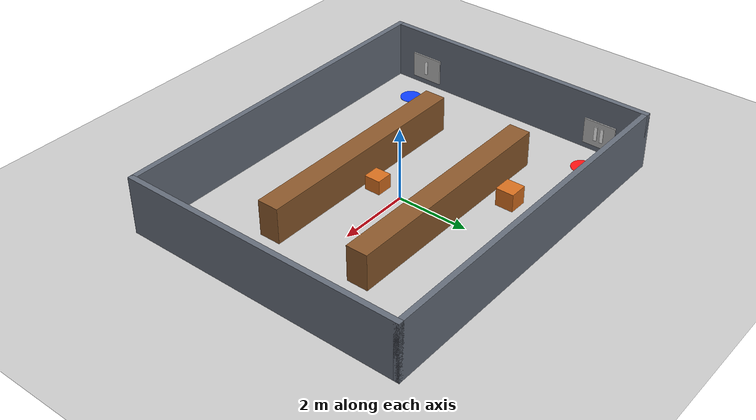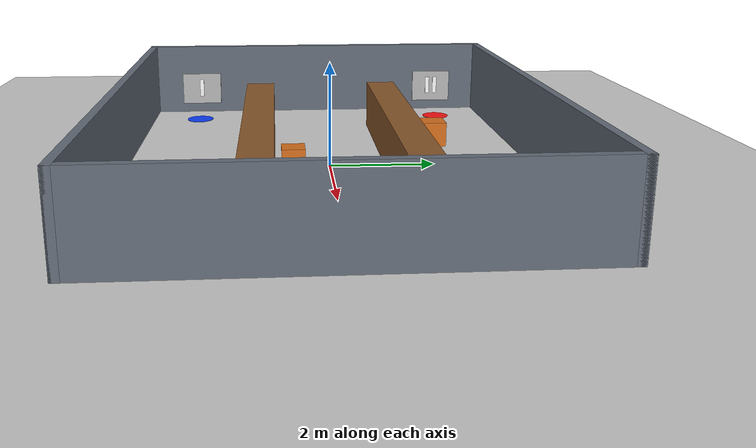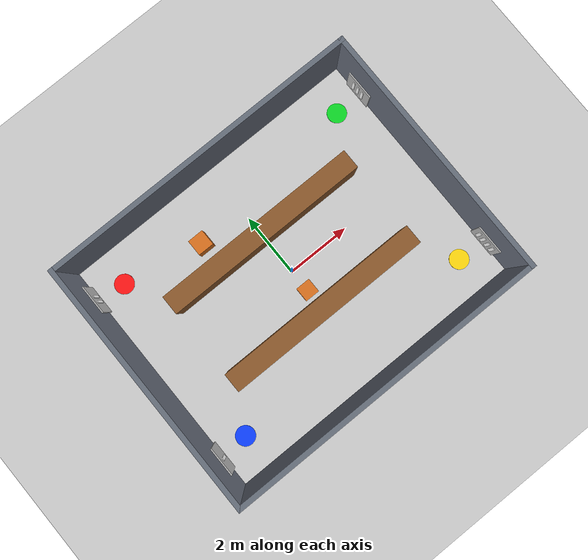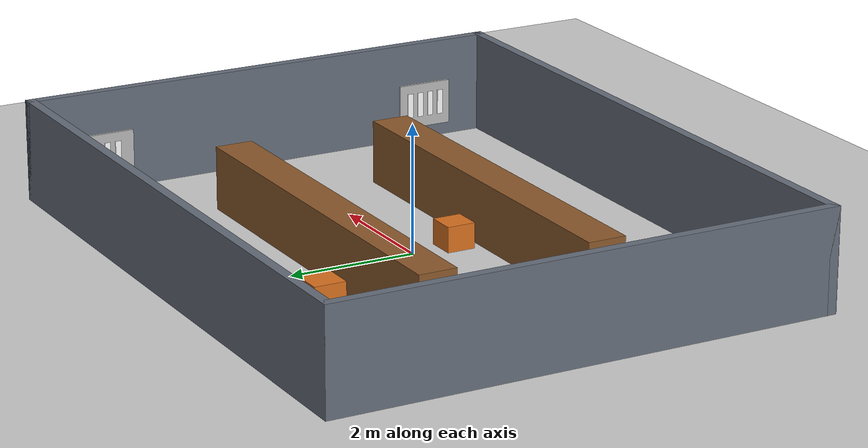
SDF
<?xml version='1.0' encoding='utf-8'?>
<sdf version="1.6">
  <world name="almacen_f1">
    <gravity>0 0 -9.81</gravity>
    <physics name="default_physics" type="ode">
      <max_step_size>0.001</max_step_size>
      <real_time_update_rate>1000</real_time_update_rate>
    </physics>
    <include>
      <uri>model://ground_plane</uri>
    </include>
    <include>
      <uri>model://sun</uri>
    </include>
    <model name="pared_oeste">
      <static>true</static>
      <pose>-4.925 0 0.8 0 0 0</pose>
      <link name="body">
        <visual name="visual">
          <geometry>
            <box>
              <size>0.15 8.0 1.6</size>
            </box>
          </geometry>
          <material>
            <ambient>0.40 0.43 0.48 1</ambient>
            <diffuse>0.40 0.43 0.48 1</diffuse>
          </material>
        </visual>
        <collision name="collision">
          <geometry>
            <box>
              <size>0.15 8.0 1.6</size>
            </box>
          </geometry>
        </collision>
      </link>
    </model>
    <model name="pared_este">
      <static>true</static>
      <pose>4.925 0 0.8 0 0 0</pose>
      <link name="body">
        <visual name="visual">
          <geometry>
            <box>
              <size>0.15 8.0 1.6</size>
            </box>
          </geometry>
          <material>
            <ambient>0.40 0.43 0.48 1</ambient>
            <diffuse>0.40 0.43 0.48 1</diffuse>
          </material>
        </visual>
        <collision name="collision">
          <geometry>
            <box>
              <size>0.15 8.0 1.6</size>
            </box>
          </geometry>
        </collision>
      </link>
    </model>
    <model name="pared_sur">
      <static>true</static>
      <pose>0 -3.925 0.8 0 0 0</pose>
      <link name="body">
        <visual name="visual">
          <geometry>
            <box>
              <size>10.0 0.15 1.6</size>
            </box>
          </geometry>
          <material>
            <ambient>0.40 0.43 0.48 1</ambient>
            <diffuse>0.40 0.43 0.48 1</diffuse>
          </material>
        </visual>
        <collision name="collision">
          <geometry>
            <box>
              <size>10.0 0.15 1.6</size>
            </box>
          </geometry>
        </collision>
      </link>
    </model>
    <model name="pared_norte">
      <static>true</static>
      <pose>0 3.925 0.8 0 0 0</pose>
      <link name="body">
        <visual name="visual">
          <geometry>
            <box>
              <size>10.0 0.15 1.6</size>
            </box>
          </geometry>
          <material>
            <ambient>0.40 0.43 0.48 1</ambient>
            <diffuse>0.40 0.43 0.48 1</diffuse>
          </material>
        </visual>
        <collision name="collision">
          <geometry>
            <box>
              <size>10.0 0.15 1.6</size>
            </box>
          </geometry>
        </collision>
      </link>
    </model>
    <model name="estante_sur">
      <static>true</static>
      <pose>0.0 -1.35 0.5 0 0 0</pose>
      <link name="body">
        <visual name="visual">
          <geometry>
            <box>
              <size>6.4 0.6 1.0</size>
            </box>
          </geometry>
          <material>
            <ambient>0.55 0.35 0.17 1</ambient>
            <diffuse>0.55 0.35 0.17 1</diffuse>
          </material>
        </visual>
        <collision name="collision">
          <geometry>
            <box>
              <size>6.4 0.6 1.0</size>
            </box>
          </geometry>
        </collision>
      </link>
    </model>
    <model name="estante_norte">
      <static>true</static>
      <pose>0.0 1.35 0.5 0 0 0</pose>
      <link name="body">
        <visual name="visual">
          <geometry>
            <box>
              <size>6.4 0.6 1.0</size>
            </box>
          </geometry>
          <material>
            <ambient>0.55 0.35 0.17 1</ambient>
            <diffuse>0.55 0.35 0.17 1</diffuse>
          </material>
        </visual>
        <collision name="collision">
          <geometry>
            <box>
              <size>6.4 0.6 1.0</size>
            </box>
          </geometry>
        </collision>
      </link>
    </model>
    <model name="caja_prueba_1">
      <static>true</static>
      <pose>0.0 -0.7 0.2 0 0 0</pose>
      <link name="body">
        <visual name="visual">
          <geometry>
            <box>
              <size>0.45 0.45 0.4</size>
            </box>
          </geometry>
          <material>
            <ambient>0.85 0.44 0.12 1</ambient>
            <diffuse>0.85 0.44 0.12 1</diffuse>
          </material>
        </visual>
        <collision name="collision">
          <geometry>
            <box>
              <size>0.45 0.45 0.4</size>
            </box>
          </geometry>
        </collision>
      </link>
    </model>
    <model name="caja_prueba_2">
      <static>true</static>
      <pose>-1.5 2.25 0.25 0 0 0</pose>
      <link name="body">
        <visual name="visual">
          <geometry>
            <box>
              <size>0.5 0.5 0.5</size>
            </box>
          </geometry>
          <material>
            <ambient>0.85 0.44 0.12 1</ambient>
            <diffuse>0.85 0.44 0.12 1</diffuse>
          </material>
        </visual>
        <collision name="collision">
          <geometry>
            <box>
              <size>0.5 0.5 0.5</size>
            </box>
          </geometry>
        </collision>
      </link>
    </model>
    <model name="estacion_recepcion">
      <static>true</static>
      <pose>-4.0 -2.8 0.008 0 0 0</pose>
      <link name="body">
        <visual name="visual">
          <geometry>
            <cylinder>
              <radius>0.3</radius>
              <length>0.01</length>
            </cylinder>
          </geometry>
          <material>
            <ambient>0.05 0.25 1 1</ambient>
            <diffuse>0.05 0.25 1 1</diffuse>
          </material>
        </visual>
      </link>
    </model>
    <model name="estacion_almacenamiento">
      <static>true</static>
      <pose>-4.0 2.8 0.008 0 0 0</pose>
      <link name="body">
        <visual name="visual">
          <geometry>
            <cylinder>
              <radius>0.3</radius>
              <length>0.01</length>
            </cylinder>
          </geometry>
          <material>
            <ambient>1 0.08 0.08 1</ambient>
            <diffuse>1 0.08 0.08 1</diffuse>
          </material>
        </visual>
      </link>
    </model>
    <model name="estacion_empaque">
      <static>true</static>
      <pose>4.0 2.8 0.008 0 0 0</pose>
      <link name="body">
        <visual name="visual">
          <geometry>
            <cylinder>
              <radius>0.3</radius>
              <length>0.01</length>
            </cylinder>
          </geometry>
          <material>
            <ambient>0.05 0.85 0.15 1</ambient>
            <diffuse>0.05 0.85 0.15 1</diffuse>
          </material>
        </visual>
      </link>
    </model>
    <model name="estacion_despacho">
      <static>true</static>
      <pose>4.0 -2.8 0.008 0 0 0</pose>
      <link name="body">
        <visual name="visual">
          <geometry>
            <cylinder>
              <radius>0.3</radius>
              <length>0.01</length>
            </cylinder>
          </geometry>
          <material>
            <ambient>1 0.85 0.05 1</ambient>
            <diffuse>1 0.85 0.05 1</diffuse>
          </material>
        </visual>
      </link>
    </model>
    <model name="panel_recepcion">
      <static>true</static>
      <pose>-4.7299999999999995 -2.8 0.6 0 0 0</pose>
      <link name="body">
        <visual name="visual">
          <geometry>
            <box>
              <size>0.04 0.9 0.72</size>
            </box>
          </geometry>
          <material>
            <script>
              <uri>model://senales_almacen/materials/scripts</uri>
              <uri>model://senales_almacen/materials/textures</uri>
              <name>AMR/RECEPCION</name>
            </script>
          </material>
        </visual>
      </link>
    </model>
    <model name="panel_recepcion_marca_1">
      <static>true</static>
      <pose>-4.693 -2.8 0.62 0 0 0</pose>
      <link name="body">
        <visual name="visual">
          <geometry>
            <box>
              <size>0.02 0.09 0.4</size>
            </box>
          </geometry>
          <material>
            <ambient>1 1 1 1</ambient>
            <diffuse>1 1 1 1</diffuse>
          </material>
        </visual>
      </link>
    </model>
    <model name="panel_almacenamiento">
      <static>true</static>
      <pose>-4.7299999999999995 2.8 0.6 0 0 0</pose>
      <link name="body">
        <visual name="visual">
          <geometry>
            <box>
              <size>0.04 0.9 0.72</size>
            </box>
          </geometry>
          <material>
            <script>
              <uri>model://senales_almacen/materials/scripts</uri>
              <uri>model://senales_almacen/materials/textures</uri>
              <name>AMR/ALMACENAMIENTO</name>
            </script>
          </material>
        </visual>
      </link>
    </model>
    <model name="panel_almacenamiento_marca_1">
      <static>true</static>
      <pose>-4.693 2.71 0.62 0 0 0</pose>
      <link name="body">
        <visual name="visual">
          <geometry>
            <box>
              <size>0.02 0.09 0.4</size>
            </box>
          </geometry>
          <material>
            <ambient>1 1 1 1</ambient>
            <diffuse>1 1 1 1</diffuse>
          </material>
        </visual>
      </link>
    </model>
    <model name="panel_almacenamiento_marca_2">
      <static>true</static>
      <pose>-4.693 2.8899999999999997 0.62 0 0 0</pose>
      <link name="body">
        <visual name="visual">
          <geometry>
            <box>
              <size>0.02 0.09 0.4</size>
            </box>
          </geometry>
          <material>
            <ambient>1 1 1 1</ambient>
            <diffuse>1 1 1 1</diffuse>
          </material>
        </visual>
      </link>
    </model>
    <model name="panel_empaque">
      <static>true</static>
      <pose>4.7299999999999995 2.8 0.6 0 0 0</pose>
      <link name="body">
        <visual name="visual">
          <geometry>
            <box>
              <size>0.04 0.9 0.72</size>
            </box>
          </geometry>
          <material>
            <script>
              <uri>model://senales_almacen/materials/scripts</uri>
              <uri>model://senales_almacen/materials/textures</uri>
              <name>AMR/EMPAQUE</name>
            </script>
          </material>
        </visual>
      </link>
    </model>
    <model name="panel_empaque_marca_1">
      <static>true</static>
      <pose>4.693 2.6199999999999997 0.62 0 0 0</pose>
      <link name="body">
        <visual name="visual">
          <geometry>
            <box>
              <size>0.02 0.09 0.4</size>
            </box>
          </geometry>
          <material>
            <ambient>1 1 1 1</ambient>
            <diffuse>1 1 1 1</diffuse>
          </material>
        </visual>
      </link>
    </model>
    <model name="panel_empaque_marca_2">
      <static>true</static>
      <pose>4.693 2.8 0.62 0 0 0</pose>
      <link name="body">
        <visual name="visual">
          <geometry>
            <box>
              <size>0.02 0.09 0.4</size>
            </box>
          </geometry>
          <material>
            <ambient>1 1 1 1</ambient>
            <diffuse>1 1 1 1</diffuse>
          </material>
        </visual>
      </link>
    </model>
    <model name="panel_empaque_marca_3">
      <static>true</static>
      <pose>4.693 2.98 0.62 0 0 0</pose>
      <link name="body">
        <visual name="visual">
          <geometry>
            <box>
              <size>0.02 0.09 0.4</size>
            </box>
          </geometry>
          <material>
            <ambient>1 1 1 1</ambient>
            <diffuse>1 1 1 1</diffuse>
          </material>
        </visual>
      </link>
    </model>
    <model name="panel_despacho">
      <static>true</static>
      <pose>4.7299999999999995 -2.8 0.6 0 0 0</pose>
      <link name="body">
        <visual name="visual">
          <geometry>
            <box>
              <size>0.04 0.9 0.72</size>
            </box>
          </geometry>
          <material>
            <script>
              <uri>model://senales_almacen/materials/scripts</uri>
              <uri>model://senales_almacen/materials/textures</uri>
              <name>AMR/DESPACHO</name>
            </script>
          </material>
        </visual>
      </link>
    </model>
    <model name="panel_despacho_marca_1">
      <static>true</static>
      <pose>4.693 -3.07 0.62 0 0 0</pose>
      <link name="body">
        <visual name="visual">
          <geometry>
            <box>
              <size>0.02 0.09 0.4</size>
            </box>
          </geometry>
          <material>
            <ambient>1 1 1 1</ambient>
            <diffuse>1 1 1 1</diffuse>
          </material>
        </visual>
      </link>
    </model>
    <model name="panel_despacho_marca_2">
      <static>true</static>
      <pose>4.693 -2.8899999999999997 0.62 0 0 0</pose>
      <link name="body">
        <visual name="visual">
          <geometry>
            <box>
              <size>0.02 0.09 0.4</size>
            </box>
          </geometry>
          <material>
            <ambient>1 1 1 1</ambient>
            <diffuse>1 1 1 1</diffuse>
          </material>
        </visual>
      </link>
    </model>
    <model name="panel_despacho_marca_3">
      <static>true</static>
      <pose>4.693 -2.71 0.62 0 0 0</pose>
      <link name="body">
        <visual name="visual">
          <geometry>
            <box>
              <size>0.02 0.09 0.4</size>
            </box>
          </geometry>
          <material>
            <ambient>1 1 1 1</ambient>
            <diffuse>1 1 1 1</diffuse>
          </material>
        </visual>
      </link>
    </model>
    <model name="panel_despacho_marca_4">
      <static>true</static>
      <pose>4.693 -2.53 0.62 0 0 0</pose>
      <link name="body">
        <visual name="visual">
          <geometry>
            <box>
              <size>0.02 0.09 0.4</size>
            </box>
          </geometry>
          <material>
            <ambient>1 1 1 1</ambient>
            <diffuse>1 1 1 1</diffuse>
          </material>
        </visual>
      </link>
    </model>
  </world>
</sdf>
